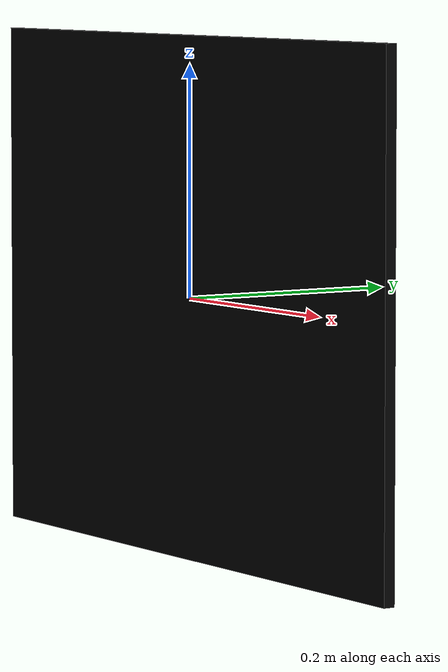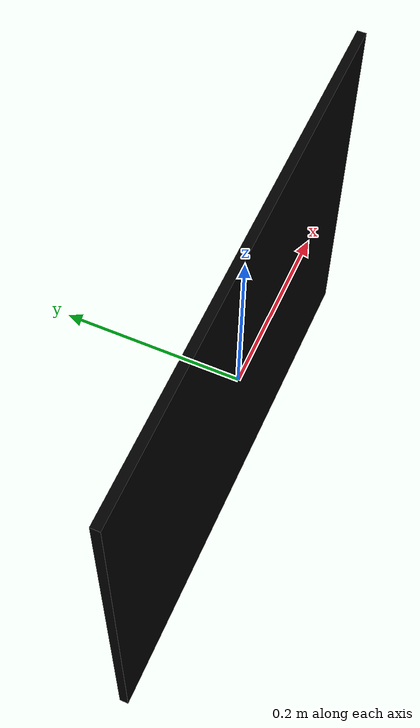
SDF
<?xml version="1.0" ?>
<sdf version="1.6">
  <model name="plate_target">
    <link name="link">
      <pose>0 0 0 0 0 0</pose>
      <inertial>
        <mass>10.0</mass>
        <inertia>
          <ixx>0.083</ixx>
          <ixy>0.0</ixy>
          <ixz>0.0</ixz>
          <iyy>0.083</iyy>
          <iyz>0.0</iyz>
          <izz>0.083</izz>
        </inertia>
      </inertial>
      <collision name="collision">
        <geometry>
          <box>
            <!-- 600 mm x 450 mm -->
            <size>0.60 0.01 0.45</size>
          </box>
        </geometry>
      </collision>
      <visual name="visual">
        <geometry>
          <box>
            <!-- 600 mm x 450 mm -->
            <size>0.60 0.01 0.45</size>
          </box>
        </geometry>
        <material> <!-- dark material -->
          <ambient>0 0 0 1</ambient>
          <diffuse>0 0 0 1</diffuse>
          <specular>0 0 0 0</specular>
          <emissive>0 0 0 1</emissive>
        </material>
      </visual>
    </link>
  </model>
</sdf>
